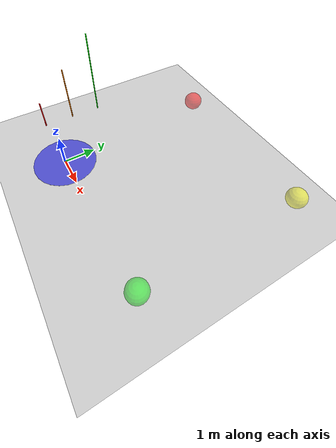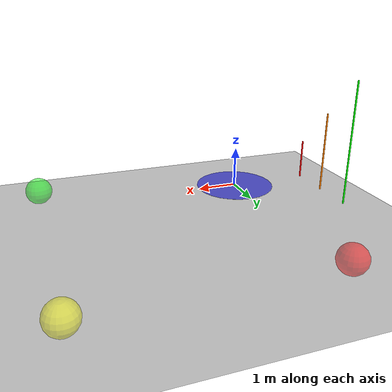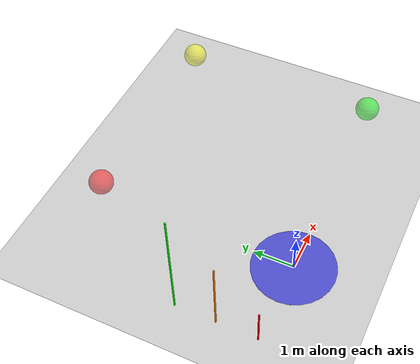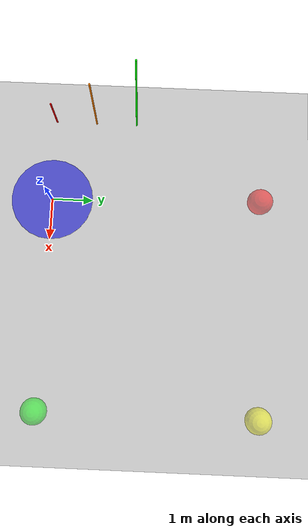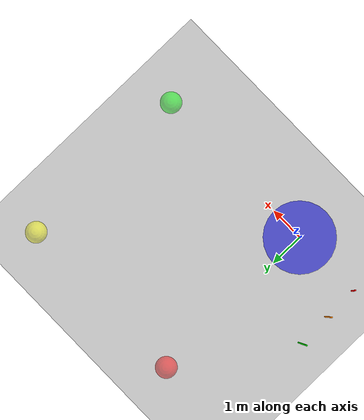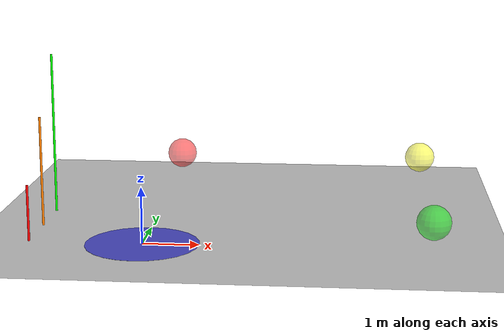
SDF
<?xml version="1.0" ?>
<sdf version="1.6">
  <world name="drone_test_world">
    <!-- Physics settings -->
    <physics type="ode">
      <max_step_size>0.002</max_step_size>
      <real_time_factor>1</real_time_factor>
      <real_time_update_rate>500</real_time_update_rate>
    </physics>

    <!-- Lighting -->
    <include>
      <uri>model://sun</uri>
    </include>

    <!-- Ground plane -->
    <include>
      <uri>model://ground_plane</uri>
    </include>

    <!-- Landing pad (visual reference) -->
    <model name="landing_pad">
      <static>true</static>
      <pose>0 0 0.001 0 0 0</pose>
      <link name="pad_link">
        <visual name="pad_visual">
          <geometry>
            <cylinder>
              <radius>1.0</radius>
              <length>0.002</length>
            </cylinder>
          </geometry>
          <material>
            <ambient>0.3 0.3 0.8 1</ambient>
            <diffuse>0.3 0.3 0.8 1</diffuse>
          </material>
        </visual>
      </link>
    </model>

    <!-- Waypoint markers -->
    <model name="waypoint_1">
      <static>true</static>
      <pose>5 0 0.5 0 0 0</pose>
      <link name="marker">
        <visual name="visual">
          <geometry>
            <sphere><radius>0.3</radius></sphere>
          </geometry>
          <material>
            <ambient>0 1 0 0.5</ambient>
            <diffuse>0 1 0 0.5</diffuse>
          </material>
        </visual>
      </link>
    </model>

    <model name="waypoint_2">
      <static>true</static>
      <pose>5 5 0.5 0 0 0</pose>
      <link name="marker">
        <visual name="visual">
          <geometry>
            <sphere><radius>0.3</radius></sphere>
          </geometry>
          <material>
            <ambient>1 1 0 0.5</ambient>
            <diffuse>1 1 0 0.5</diffuse>
          </material>
        </visual>
      </link>
    </model>

    <model name="waypoint_3">
      <static>true</static>
      <pose>0 5 0.5 0 0 0</pose>
      <link name="marker">
        <visual name="visual">
          <geometry>
            <sphere><radius>0.3</radius></sphere>
          </geometry>
          <material>
            <ambient>1 0 0 0.5</ambient>
            <diffuse>1 0 0 0.5</diffuse>
          </material>
        </visual>
      </link>
    </model>

    <!-- Height reference poles -->
    <model name="height_pole_1m">
      <static>true</static>
      <pose>-2 0 0.5 0 0 0</pose>
      <link name="pole">
        <visual name="visual">
          <geometry>
            <cylinder>
              <radius>0.02</radius>
              <length>1.0</length>
            </cylinder>
          </geometry>
          <material>
            <ambient>1 0 0 1</ambient>
            <diffuse>1 0 0 1</diffuse>
          </material>
        </visual>
      </link>
    </model>

    <model name="height_pole_2m">
      <static>true</static>
      <pose>-2 1 1.0 0 0 0</pose>
      <link name="pole">
        <visual name="visual">
          <geometry>
            <cylinder>
              <radius>0.02</radius>
              <length>2.0</length>
            </cylinder>
          </geometry>
          <material>
            <ambient>1 0.5 0 1</ambient>
            <diffuse>1 0.5 0 1</diffuse>
          </material>
        </visual>
      </link>
    </model>

    <model name="height_pole_3m">
      <static>true</static>
      <pose>-2 2 1.5 0 0 0</pose>
      <link name="pole">
        <visual name="visual">
          <geometry>
            <cylinder>
              <radius>0.02</radius>
              <length>3.0</length>
            </cylinder>
          </geometry>
          <material>
            <ambient>0 1 0 1</ambient>
            <diffuse>0 1 0 1</diffuse>
          </material>
        </visual>
      </link>
    </model>

    <!-- Camera view -->
    <gui>
      <camera name="user_camera">
        <pose>-5 -5 5 0 0.5 0.8</pose>
      </camera>
    </gui>

  </world>
</sdf>
